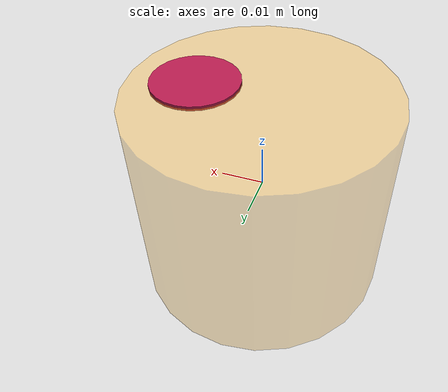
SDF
<?xml version="1.0"?>
<sdf version="1.7">
  <model name="000_my_cylinder_small_yellow_visual">
    <link name="visual_cylinder_base_link_yellow">
      <inertial>
        <mass>1.</mass>
        <inertia>
          <ixx>4.33e-4</ixx>
          <ixy>0</ixy>
          <ixz>0</ixz>
          <iyy>4.33e-4</iyy>
          <iyz>0</iyz>
          <izz>4.5e-4</izz>
        </inertia>
      </inertial>
      <visual name="cylinder_visual">
        <pose>0 0 0 0 0 0</pose>
        <geometry>
          <cylinder>
            <radius>0.03</radius>
            <length>0.05</length>
          </cylinder>
        </geometry>
        <material>
          <diffuse> 1. 0.647 0 .3</diffuse>
        </material>
      </visual>
    </link>

    <!-- Add a link for visual, easy to see when spinning -->
    <link name="marker">
      <visual name="marker">
      <pose> 0.015 0 0.025 0 0 0 </pose>
        <geometry>
          <cylinder>
            <radius> 0.01 </radius>
            <length> 0.001 </length>
            </cylinder>
        </geometry>
        <material>
          <diffuse> 0.7 0.1 0.3 1.0</diffuse>
        </material>
      </visual>
    </link>

    <joint name="joint" type="fixed">
      <parent>visual_cylinder_base_link_yellow</parent>
      <child>marker</child>
    </joint>

  </model>
</sdf>
